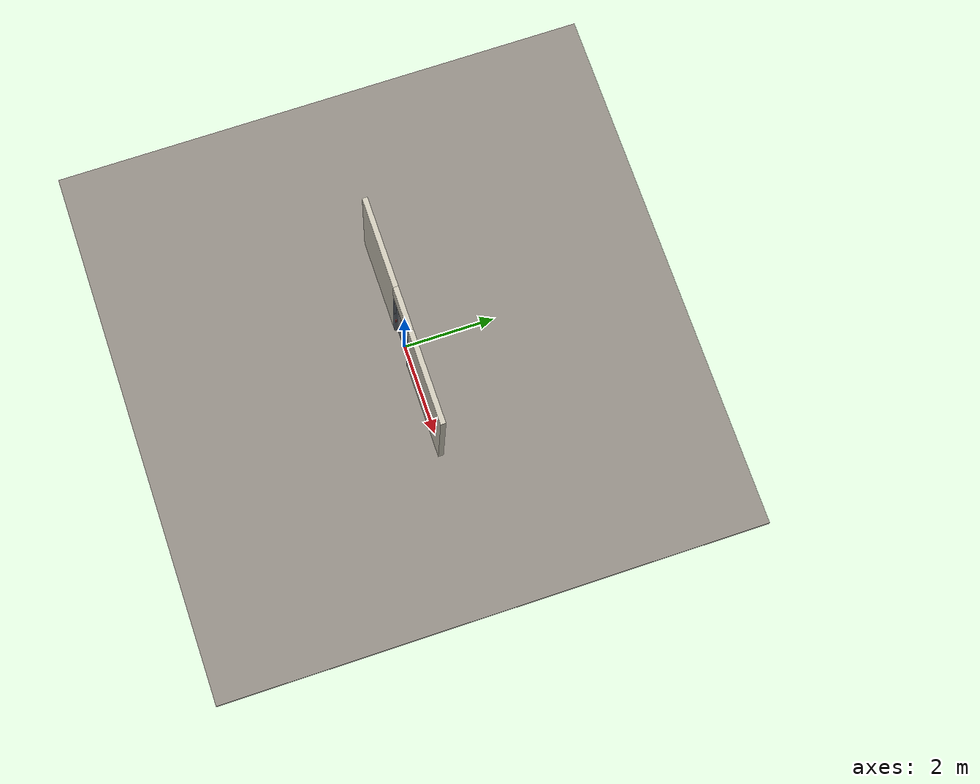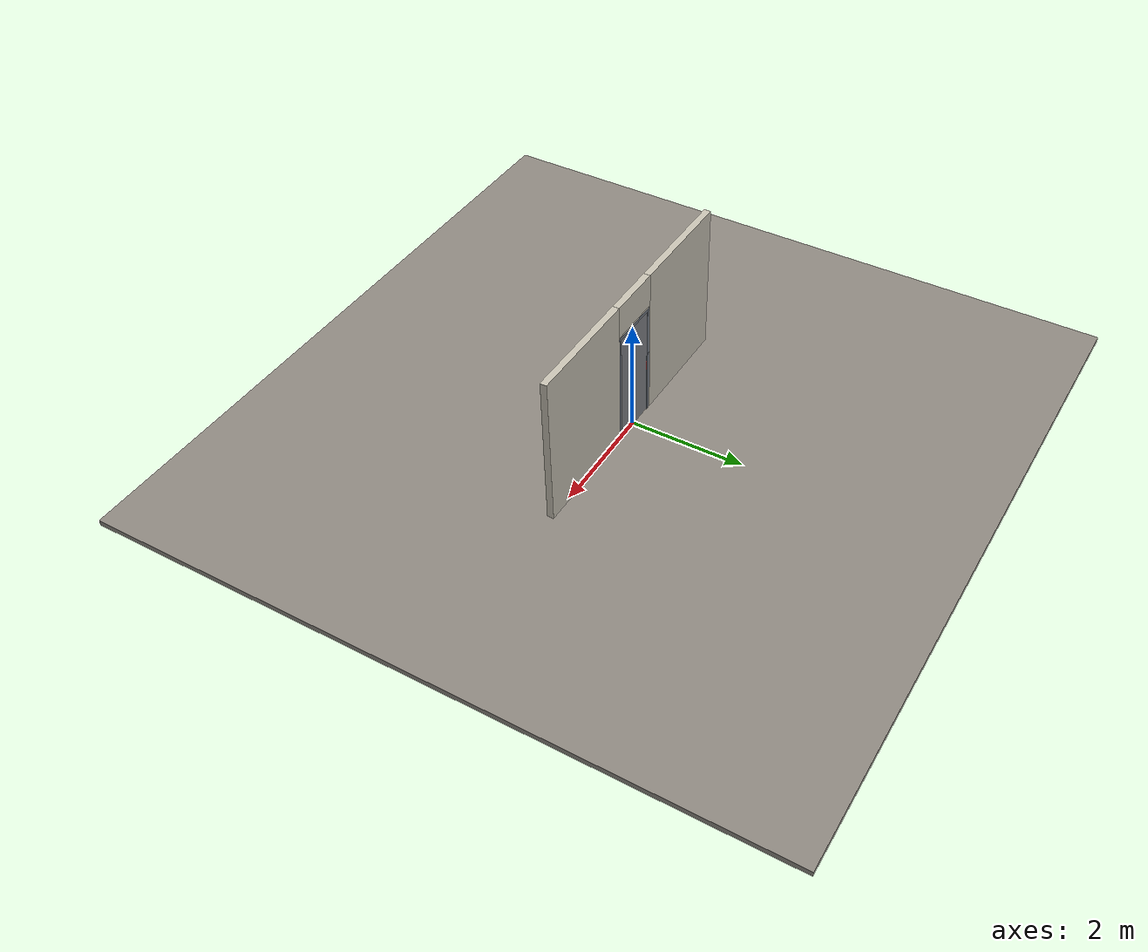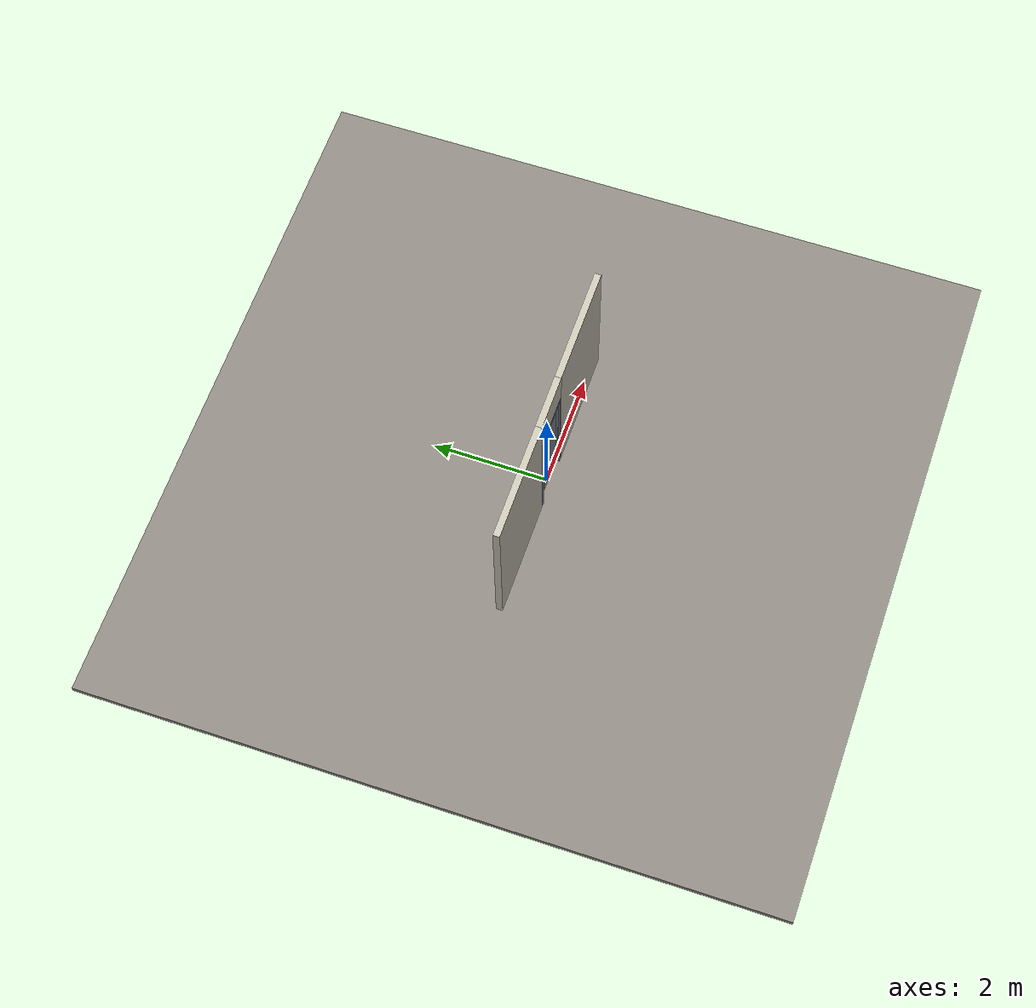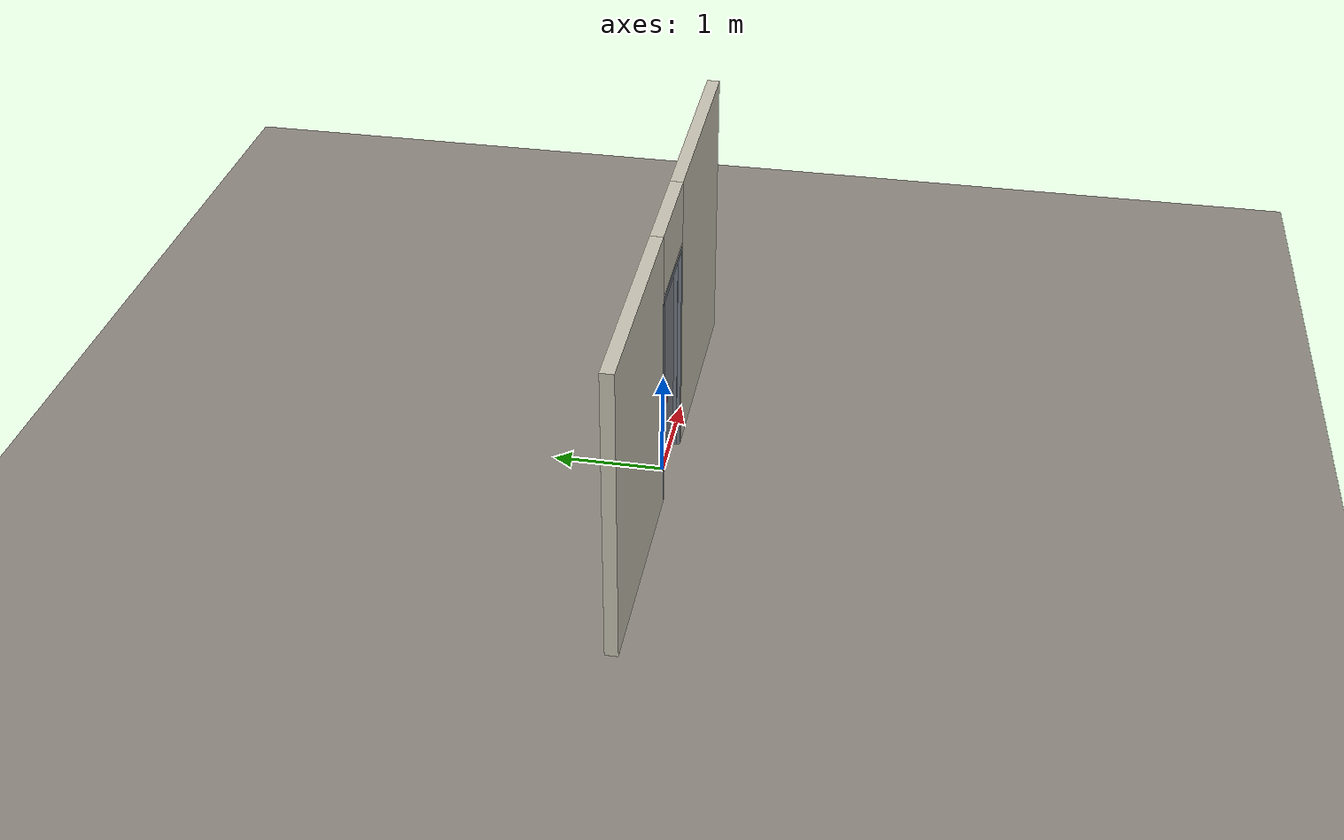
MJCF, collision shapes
<?xml version="1.0" ?>
<mujoco model="db0523_swing_single_minimal">
  <compiler angle="radian" meshdir="../../hardware" texturedir="../../textures" autolimits="true" inertiafromgeom="false"/>
  <option timestep="0.002" integrator="implicitfast" cone="elliptic" impratio="10" noslip_iterations="3">
    <flag multiccd="enable"/>
  </option>
  <size memory="16M"/>
  <default>
    <geom condim="4" solref="0.005 1" solimp="0.95 0.99 0.001"/>
    <joint solreflimit="0.005 1" solimplimit="0.95 0.99 0.001"/>
    <tendon solreflimit="0.005 1"/>
    <equality solref="0.002 1"/>
  </default>
  <visual>
    <headlight ambient="0.4 0.4 0.4" diffuse="0.7 0.7 0.7" specular="0.2 0.2 0.2"/>
    <quality shadowsize="4096"/>
    <map znear="0.01" zfar="60"/>
  </visual>
  <asset>
    <mesh name="pull_1e5d69a91a" file="pull_1e5d69a91a.obj"/>
    <material name="mat_floor" rgba="0.55 0.53 0.5 1" specular="0.2" shininess="0.15" reflectance="0"/>
    <material name="mat_wall" rgba="0.78 0.76 0.7 1" specular="0.2" shininess="0.1" reflectance="0"/>
    <material name="mat_leaf" rgba="0.5 0.51 0.53 1" specular="0.2" shininess="0.44" reflectance="0"/>
    <material name="mat_hinge" rgba="0.65 0.66 0.68 1" specular="0.74" shininess="0.5" reflectance="0.36"/>
    <material name="mat_op_stainless" rgba="0.75 0.76 0.77 1" specular="0.8" shininess="0.65" reflectance="0.4"/>
    <material name="mat_deadbolt" rgba="0.85 0.66 0.3 1" specular="0.8" shininess="0.75" reflectance="0.4"/>
    <material name="mat_frame" rgba="0.45 0.48 0.52 1" specular="0.32" shininess="0.6" reflectance="0.08"/>
    <material name="mat_closer" rgba="0.22 0.17 0.13 1" specular="0.8" shininess="0.6" reflectance="0.4"/>
    <material name="mat_kick" rgba="0.75 0.76 0.77 1" specular="0.8" shininess="0.65" reflectance="0.4"/>
    <texture name="skybox" type="skybox" builtin="gradient" rgb1="0.6 0.7 0.85" rgb2="0.9 0.92 0.95" width="256" height="256"/>
  </asset>
  <worldbody>
    <light name="sun" pos="1.5 -2.5 4" dir="-0.3 0.5 -0.8" directional="true" diffuse="0.8 0.8 0.8" specular="0.3 0.3 0.3" castshadow="true"/>
    <light name="fill" pos="-1.5 2.5 3" dir="0.3 -0.5 -0.7" directional="true" diffuse="0.35 0.35 0.4" castshadow="false"/>
    <camera name="robot_view" pos="0 -2.570688 1.734312" xyaxes="1 0 0 0 0.26963 0.962964" fovy="52"/>
    <camera name="far_view" pos="0 2.513687 1.734312" xyaxes="-1 0 0 0 -0.26963 0.962964" fovy="52"/>
    <camera name="iso" pos="-1.932062 -2.163938 2.141063" xyaxes="0.741536 -0.670913 0 0.242917 0.268487 0.932151" fovy="46"/>
    <camera name="detail_handle" pos="-0.1205 -0.882 1.32" xyaxes="0.97561 0.219512 0 -0.070934 0.315262 0.94635" fovy="38"/>
    <geom name="floor" type="box" size="6 6 0.05" pos="0 0 -0.05" material="mat_floor" group="0" contype="1" conaffinity="1" friction="0.8 0.005 0.0001" density="2400"/>
    <geom name="wall_left" type="box" size="1.00475 0.0575 1.35" pos="-1.49525 -0.0285 1.35" material="mat_wall" group="0" contype="1" conaffinity="1" friction="0.6 0.005 0.0001" density="800"/>
    <geom name="wall_right" type="box" size="1.01975 0.0575 1.35" pos="1.48025 -0.0285 1.35" material="mat_wall" group="0" contype="1" conaffinity="1" friction="0.6 0.005 0.0001" density="800"/>
    <geom name="wall_header" type="box" size="0.4755 0.0575 0.2875" pos="-0.015 -0.0285 2.4125" material="mat_wall" group="0" contype="1" conaffinity="1" friction="0.6 0.005 0.0001" density="800"/>
    <geom name="jamb_hinge" type="box" size="0.025 0.0575 1.0225" pos="0.4355 -0.0285 1.0225" material="mat_frame" group="0" contype="1" conaffinity="1" friction="0.6 0.005 0.0001" density="300"/>
    <geom name="strike_1180_wall_n" type="box" size="0.04 0.03825 0.0155" pos="-0.4505 -0.04775 1.18" material="mat_frame" group="0" contype="1" conaffinity="1" friction="0.6 0.005 0.0001" density="300"/>
    <geom name="strike_1180_wall_p" type="box" size="0.04 0.00975 0.0155" pos="-0.4505 0.01925 1.18" material="mat_frame" group="0" contype="1" conaffinity="1" friction="0.6 0.005 0.0001" density="300"/>
    <geom name="strike_1180_back" type="box" size="0.0253 0.0095 0.0155" pos="-0.4652 0 1.18" material="mat_frame" group="0" contype="1" conaffinity="1" friction="0.6 0.005 0.0001" density="300"/>
    <geom name="jamb_strike_0" type="box" size="0.04 0.0575 0.58225" pos="-0.4505 -0.0285 0.58225" material="mat_frame" group="0" contype="1" conaffinity="1" friction="0.6 0.005 0.0001" density="300"/>
    <geom name="jamb_strike_1" type="box" size="0.04 0.0575 0.42475" pos="-0.4505 -0.0285 1.62025" material="mat_frame" group="0" contype="1" conaffinity="1" friction="0.6 0.005 0.0001" density="300"/>
    <geom name="jamb_head" type="box" size="0.4755 0.0575 0.025" pos="-0.015 -0.0285 2.07" material="mat_frame" group="0" contype="1" conaffinity="1" friction="0.6 0.005 0.0001" density="300"/>
    <geom name="head_stud" type="box" size="0.4755 0.0575 0.015" pos="-0.015 -0.0285 2.11" material="mat_wall" group="0" contype="1" conaffinity="1" friction="0.6 0.005 0.0001" density="500"/>
    <geom name="stop_hinge" type="box" size="0.0055 0.016 1.0225" pos="0.405 -0.0385 1.0225" material="mat_frame" group="0" contype="1" conaffinity="1" friction="0.6 0.005 0.0001" density="300"/>
    <geom name="stop_strike" type="box" size="0.0055 0.016 1.0225" pos="-0.405 -0.0385 1.0225" material="mat_frame" group="0" contype="1" conaffinity="1" friction="0.6 0.005 0.0001" density="300"/>
    <geom name="stop_head" type="box" size="0.4105 0.016 0.0055" pos="0 -0.0385 2.0395" material="mat_frame" group="0" contype="1" conaffinity="1" friction="0.6 0.005 0.0001" density="300"/>
    <site name="approach_point" pos="0 -1.5 0" quat="1 0 0 0" size="0.05" rgba="0.2 0.9 0.2 0.5" group="4"/>
    <site name="goal_point" pos="0 1.5 0" quat="1 0 0 0" size="0.05" rgba="0.2 0.9 0.2 0.5" group="4"/>
    <site name="door_plane_center" pos="0 0 1.0225" quat="1 0 0 0" size="0.02" rgba="0.2 0.9 0.2 0.5" group="4"/>
    <body name="leaf" pos="0.4105 0 0">
      <inertial pos="-0.414393 0 1.025243" mass="59.77673" quat="0.500064 0.500064 0.499936 -0.499936" diaginertia="3.340838214 20.252645351 23.563588044"/>
      <joint name="leaf_hinge" type="hinge" axis="0 0 -1" pos="-0.003 0.029 0" limited="true" range="0 1.745329" damping="10.160326" frictionloss="0.322071" stiffness="14.183889" springref="-2.144687" armature="0.02"/>
      <geom name="leaf_slab" type="box" size="0.4065 0.022 1.016" pos="-0.4095 0 1.025" material="mat_leaf" group="0" contype="1" conaffinity="1" friction="0.4 0.005 0.0001" density="1"/>
      <geom name="leaf_pull_n" type="mesh" mesh="pull_1e5d69a91a" pos="-0.711 -0.022 1.04" quat="0 0 -0.707107 0.707107" material="mat_op_stainless" group="1" contype="0" conaffinity="0" density="3000"/>
      <geom name="leaf_pull_col_n" type="capsule" size="0.0095 0.08" pos="-0.711 -0.082 1.04" material="mat_op_stainless" group="3" contype="1" conaffinity="1" rgba="0.8 0.3 0.3 0.25" friction="0.7 0.01 0.0001" density="3000"/>
      <geom name="leaf_pull_p" type="mesh" mesh="pull_1e5d69a91a" pos="-0.711 0.022 1.04" quat="0 0 0.707107 0.707107" material="mat_op_stainless" group="1" contype="0" conaffinity="0" density="3000"/>
      <geom name="leaf_pull_col_p" type="capsule" size="0.0095 0.08" pos="-0.711 0.082 1.04" material="mat_op_stainless" group="3" contype="1" conaffinity="1" rgba="0.8 0.3 0.3 0.25" friction="0.7 0.01 0.0001" density="3000"/>
      <site name="leaf_pull_grip_n" pos="-0.711 -0.082 1.04" quat="1 0 0 0" size="0.012" rgba="0.2 0.9 0.2 0.5" group="4"/>
      <site name="leaf_pull_grip_p" pos="-0.711 0.082 1.04" quat="1 0 0 0" size="0.012" rgba="0.2 0.9 0.2 0.5" group="4"/>
      <site name="leaf_edge_mid" pos="-0.816 0 1.016" quat="1 0 0 0" size="0.02" rgba="0.2 0.9 0.2 0.5" group="4"/>
    </body>
  </worldbody>
  <sensor>
    <jointpos name="leaf_hinge_pos" joint="leaf_hinge"/>
    <jointvel name="leaf_hinge_vel" joint="leaf_hinge"/>
  </sensor>
</mujoco>
